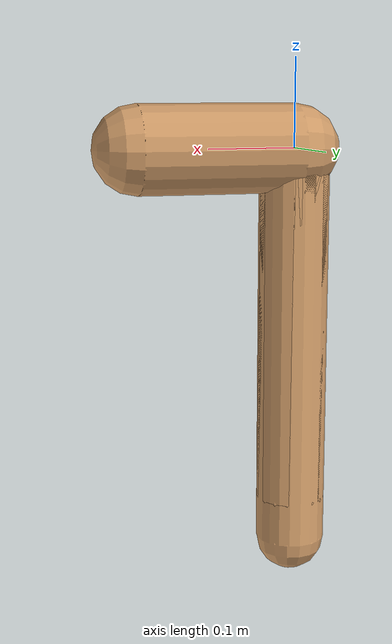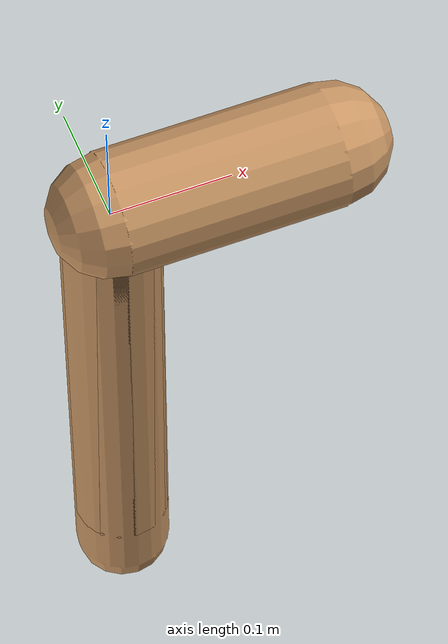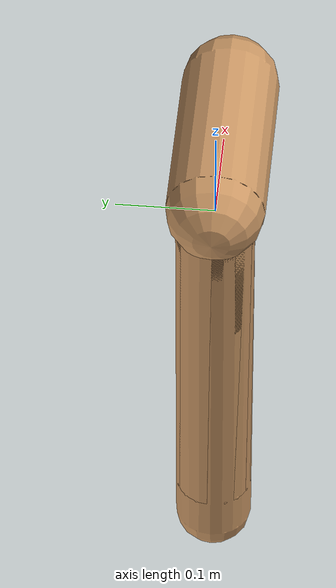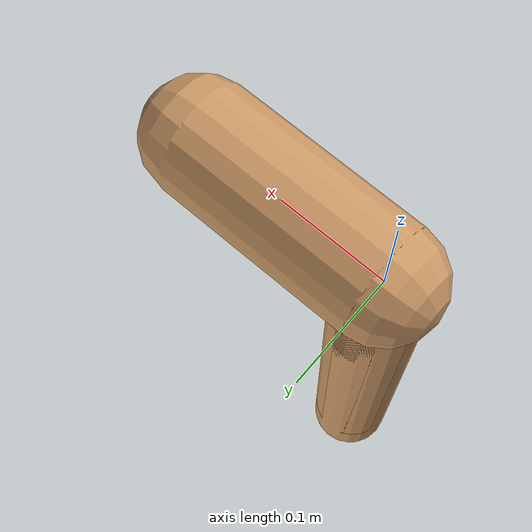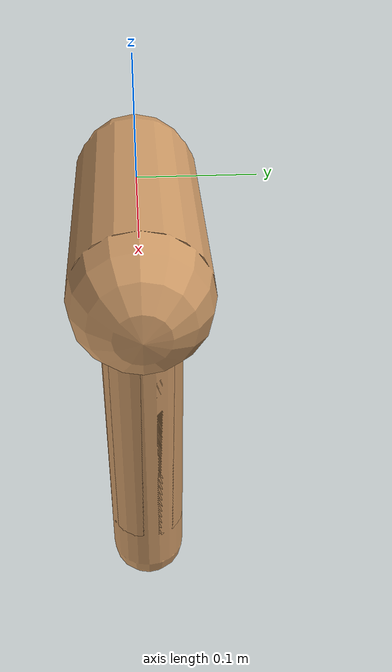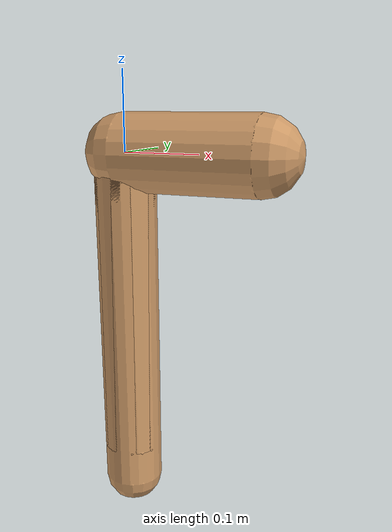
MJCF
<!-- converted to geom fromto version -->
<mujoco model="walker2d">
    <compiler angle="degree" coordinate="global" inertiafromgeom="true"/>
    <default>
      <joint armature="0.01" damping=".1" limited="true"/>
      <geom conaffinity="0" condim="3" contype="1" density="1000" friction="0.8 .1 .1" rgba="0.8 0.6 .4 1"/>
    </default>
    <option integrator="RK4" timestep="0.002"/>
    <worldbody>
      <body name="torso" pos="0 0 1.49">
        <joint armature="0" axis="1 0 0" damping="0" limited="false" name="ignorex" pos="0 0 0" stiffness="0" type="slide"/>
        <joint armature="0" axis="0 0 1" damping="0" limited="false" name="ignorez" pos="0 0 0" ref="1.25" stiffness="0" type="slide"/>
        <joint armature="0" axis="0 1 0" damping="0" limited="false" name="ignorey" pos="0 0 0" stiffness="0" type="hinge"/>
        <geom fromto="0 0 0 0 0 -0.41" name="torso_geom" size="0.04" type="capsule"/>
        <body name="arm" pos="0 0 -0.2">
          <joint axis="0 -1 0" name="arm_joint" pos="0 0 0" range="-60 60" type="hinge"/>
          <geom fromto="0 0 0 0 0 -0.3" name="arm_geom" size="0.03" type="capsule"/>
        </body>
        <body name="arm_left" pos="0 0 -0.2">
          <joint axis="0 -1 0" name="arm_left_joint" pos="0 0 0" range="-90 90" type="hinge"/>
          <geom fromto="0 0 0 0 0 -0.3" name="arm_left_geom" size="0.03" type="capsule"/>
        </body>
        <body name="thigh" pos="0 0 -0.41">
          <joint axis="0 -1 0" name="thigh_joint" pos="0 0 0" range="-150 50" type="hinge"/>
          <geom fromto="0 0 0 0 0 -0.46" name="thigh_geom" size="0.04" type="capsule"/>
          <body name="leg" pos="0 0 -0.46">
            <joint axis="0 -1 0" name="leg_joint" pos="0 0 0" range="-150 0" type="hinge"/>
            <geom fromto="0 0 0 0 0 -0.46" name="leg_geom" size="0.04" type="capsule"/>
            <body name="foot" pos="0 0 -0.46">
              <joint axis="0 -1 0" name="foot_joint" pos="0 0 0" range="-45 45" type="hinge"/>
              <geom fromto="0 0 0 0.18 0 0" name="foot_geom" size="0.05" type="capsule"/>
            </body>
          </body>
        </body>
        <body name="thigh_left" pos="0 0 -0.41">
          <joint axis="0 -1 0" name="thigh_left_joint" pos="0 0 0" range="-150 50" type="hinge"/>
          <geom fromto="0 0 0 0 0 -0.46" name="thigh_left_geom" rgba=".7 .3 .6 1" size="0.04" type="capsule"/>
          <body name="leg_left" pos="0 0 -0.46">
            <joint axis="0 -1 0" name="leg_left_joint" pos="0 0 0" range="-150 0" type="hinge"/>
            <geom fromto="0 0 0 0 0 -0.46" name="leg_left_geom" rgba=".7 .3 .6 1" size="0.04" type="capsule"/>
            <body name="foot_left" pos="0 0 -0.46">
              <joint axis="0 -1 0" name="foot_left_joint" pos="0 0 0" range="-45 45" type="hinge"/>
              <geom fromto="0 0 0 0.18 0 0" name="foot_left_geom" rgba=".7 .3 .6 1" size="0.05" type="capsule"/>
            </body>
          </body>
        </body>
      </body>
    </worldbody>
    <actuator>
      <motor ctrllimited="true" ctrlrange="-1.0 1.0" gear="100" joint="arm_joint"/>
      <motor ctrllimited="true" ctrlrange="-1.0 1.0" gear="100" joint="arm_left_joint"/>
      <motor ctrllimited="true" ctrlrange="-1.0 1.0" gear="100" joint="thigh_joint"/>
      <motor ctrllimited="true" ctrlrange="-1.0 1.0" gear="100" joint="leg_joint"/>
      <motor ctrllimited="true" ctrlrange="-1.0 1.0" gear="100" joint="foot_joint"/>
      <motor ctrllimited="true" ctrlrange="-1.0 1.0" gear="100" joint="thigh_left_joint"/>
      <motor ctrllimited="true" ctrlrange="-1.0 1.0" gear="100" joint="leg_left_joint"/>
      <motor ctrllimited="true" ctrlrange="-1.0 1.0" gear="100" joint="foot_left_joint"/>
    </actuator>
  </mujoco>
